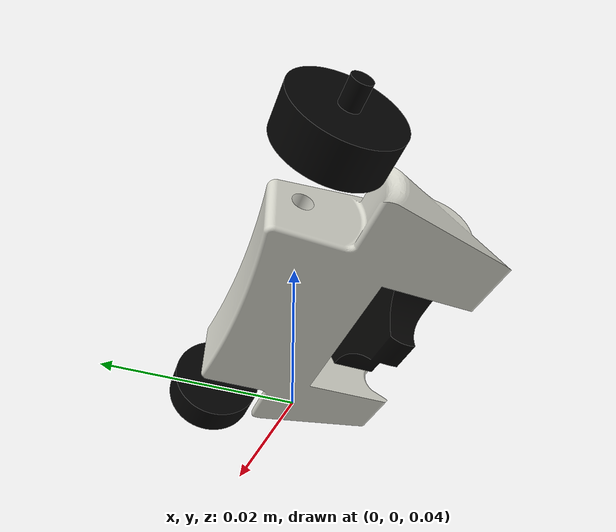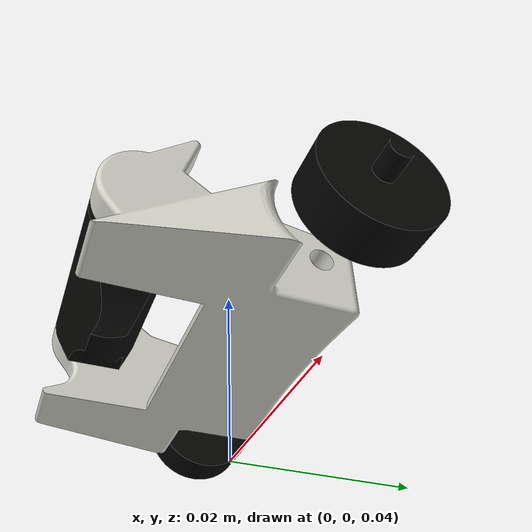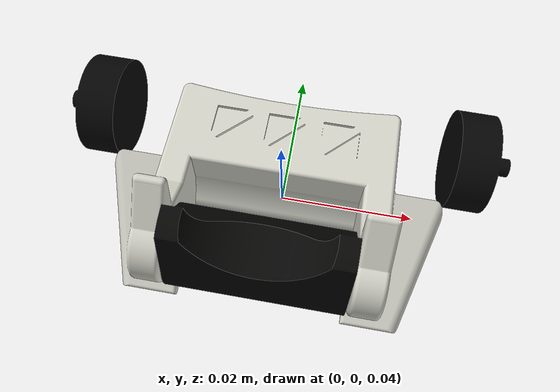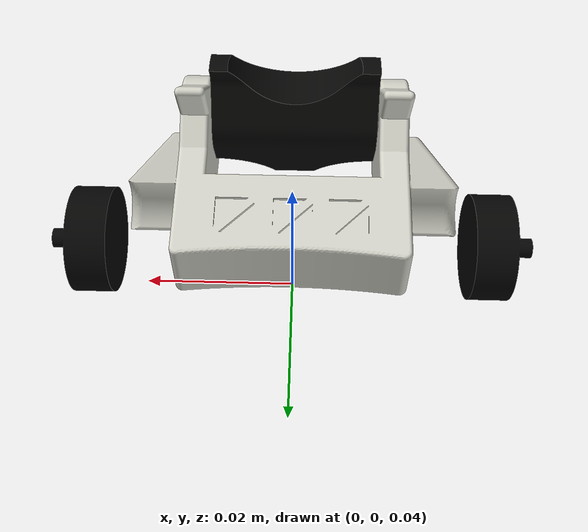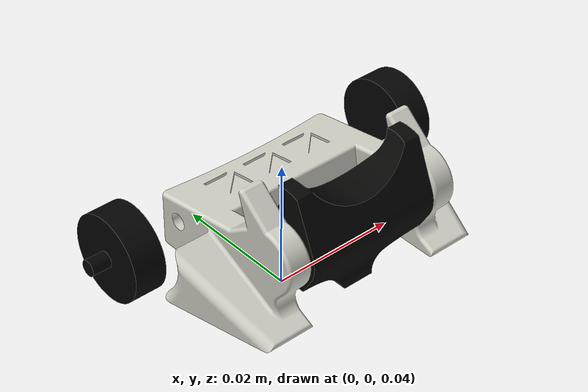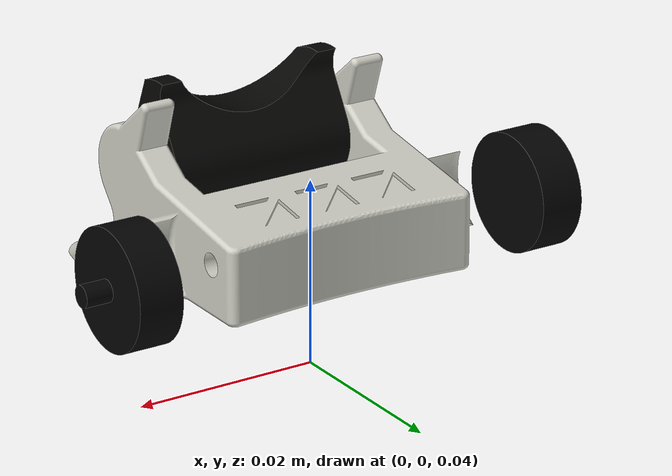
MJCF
<?xml version="1.0" ?>
<mujoco model="battlebot">
  <compiler angle="radian" autolimits="true" inertiafromgeom="true"/>
  <option timestep="0.002500" gravity="0 0 -9.810000" integrator="implicitfast" solver="Newton"/>
  <asset>
    <mesh name="rupture_mini_chassis_solid_001_mesh" file="meshes/battlebot/rupture_mini_chassis_solid_001.stl" scale="0.001 0.001 0.001"/>
    <mesh name="rupture_mini_weapon_solid_002_mesh" file="meshes/battlebot/rupture_mini_weapon_solid_002.stl" scale="0.001 0.001 0.001"/>
    <mesh name="rupture_mini_wheel_solid_003_mesh" file="meshes/battlebot/rupture_mini_wheel_solid_003.stl" scale="0.001 0.001 0.001"/>
  </asset>
  <default>
    <geom contype="1" conaffinity="1" condim="4" margin="0.002000" solref="0.005 1"/>
    <joint armature="0.01"/>
  </default>
  <visual>
    <headlight diffuse="0.6 0.6 0.6" ambient="0.3 0.3 0.3" specular="0 0 0"/>
  </visual>
  <worldbody>
    <body name="battlebot" pos="0 0 0.05">
      <freejoint name="root_free"/>
      <geom name="rupture_mini_chassis_solid_001_geom" type="mesh" mesh="rupture_mini_chassis_solid_001_mesh" mass="0.5" friction="0.9 0.01 0.001" rgba="0.82 0.82 0.78 1"/>
      <geom name="rupture_mini_weapon_solid_002_geom" type="mesh" mesh="rupture_mini_weapon_solid_002_mesh" pos="-0.0104775 -0.013284057 0.009372451" quat="0.5 0.5 0.5 0.5" mass="0.25" friction="0.9 0.01 0.001" rgba="0.02 0.018 0.015 1"/>
      <geom name="rupture_mini_wheel_left_geom" type="mesh" mesh="rupture_mini_wheel_solid_003_mesh" pos="-0.021191381 0.004314427 0.005547544" quat="0.70710678 0 -0.70710678 0" mass="0.125" friction="1.1 0.02 0.001" rgba="0.015 0.014 0.013 1"/>
      <geom name="rupture_mini_wheel_right_geom" type="mesh" mesh="rupture_mini_wheel_solid_003_mesh" pos="0.021191381 0.004314427 0.005547544" quat="0.70710678 0 0.70710678 0" mass="0.125" friction="1.1 0.02 0.001" rgba="0.015 0.014 0.013 1"/>
    </body>
  </worldbody>
</mujoco>
